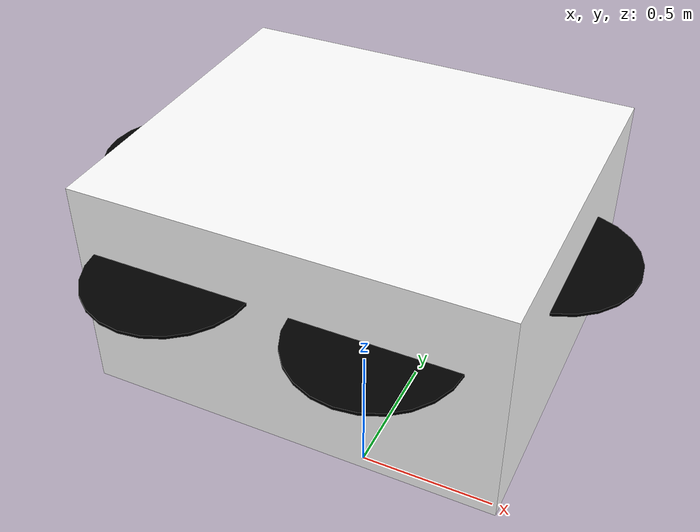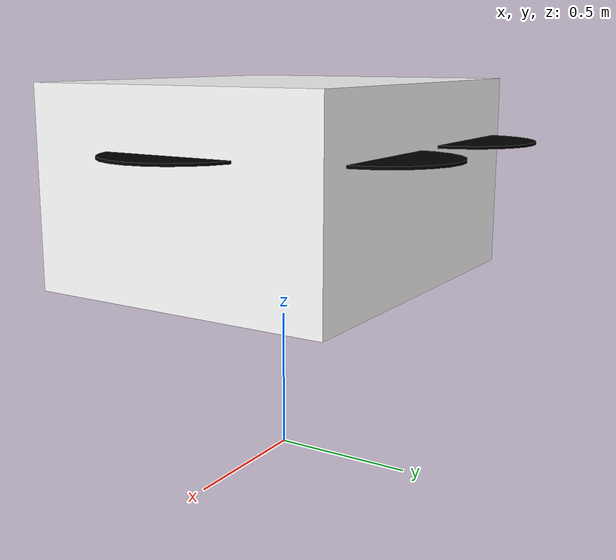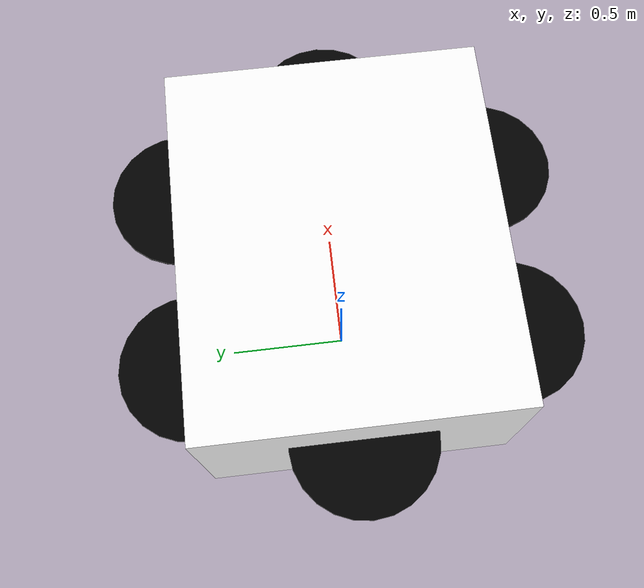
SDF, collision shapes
<sdf version='1.11'>
  <model name='my_hexacopter'>
    <plugin
      filename="libgz-sim-sensors-system.so"
      name="gz::sim::systems::Sensors">
      <render_engine>ogre2</render_engine>
    </plugin>
    <plugin filename="libgz-sim-multicopter-motor-model-system.so" name="gz::sim::systems::MulticopterMotorModel">
      <robotNamespace>my_hexacopter</robotNamespace>
      <jointName>rotor_1-joint</jointName>
      <jointName>rotor_2-joint</jointName>
      <jointName>rotor_3-joint</jointName>
      <jointName>rotor_4-joint</jointName>
      <jointName>rotor_5-joint</jointName>
      <jointName>rotor_6-joint</jointName>
      <linkName>rotor_1_link</linkName>
      <linkName>rotor_2_link</linkName>
      <linkName>rotor_3_link</linkName>
      <linkName>rotor_4_link</linkName>
      <linkName>rotor_5_link</linkName>
      <linkName>rotor_6_link</linkName>
      <turningDirection>cw</turningDirection>
      <turningDirection>ccw</turningDirection>
      <turningDirection>cw</turningDirection>
      <turningDirection>ccw</turningDirection>
      <turningDirection>cw</turningDirection>
      <turningDirection>ccw</turningDirection>
      <motorType>velocity</motorType>
      <motorConstant>8.54858e-06</motorConstant>
      <momentConstant>0.016</momentConstant>
      <commandSubTopic>command/motor_speed</commandSubTopic>
      <motorNumber>0</motorNumber>
      <motorNumber>1</motorNumber>
      <motorNumber>2</motorNumber>
      <motorNumber>3</motorNumber>
      <motorNumber>4</motorNumber>
      <motorNumber>5</motorNumber>
      <rotorDragCoefficient>0.000806428</rotorDragCoefficient>
      <rotorVelocitySlowdownSim>10</rotorVelocitySlowdownSim>
      <frequencyCutoff>500</frequencyCutoff>
      <samplingRate>250</samplingRate>
    </plugin>

    <static>false</static>
    <pose>0 0 1 0 0 0</pose>
    <link name='base_link'>
      <inertial>
        <mass>1.5</mass>
        <inertia>
          <ixx>0.03</ixx><ixy>0</ixy><ixz>0</ixz>
          <iyy>0.03</iyy><iyz>0</iyz><izz>0.06</izz>
        </inertia>
      </inertial>
      <collision name='base_link_collision'>
        <geometry><box><size>1.3 1.1 0.7</size></box></geometry>
      </collision>
      <visual name='base_link_visual'>
        <pose>0 0 0 3.14159 0 0</pose>
        <geometry>
          <mesh>
            <scale>1 1 1</scale>
            <uri>model://my_hexacopter/meshes/base_link.STL</uri>
          </mesh>
        </geometry>
        <material>
          <diffuse>1 1 1 1</diffuse>
          <ambient>1 1 1 1</ambient>
        </material>
      </visual>

      <sensor name="air_pressure_sensor" type="air_pressure">
        <always_on>1</always_on>
        <update_rate>50</update_rate>
        <air_pressure>
          <pressure>
            <noise type="gaussian"><mean>0</mean><stddev>3</stddev></noise>
          </pressure>
        </air_pressure>
      </sensor>

      <sensor name="magnetometer_sensor" type="magnetometer">
        <always_on>1</always_on>
        <update_rate>100</update_rate>
        <magnetometer>
          <x><noise type="gaussian"><stddev>0.0001</stddev></noise></x>
          <y><noise type="gaussian"><stddev>0.0001</stddev></noise></y>
          <z><noise type="gaussian"><stddev>0.0001</stddev></noise></z>
        </magnetometer>
      </sensor>

      <sensor name="imu_sensor" type="imu">
        <always_on>1</always_on>
        <update_rate>250</update_rate>
        <imu>
          <angular_velocity>
            <x><noise type="gaussian"><mean>0.0</mean><stddev>0.00087</stddev></noise></x>
            <y><noise type="gaussian"><mean>0.0</mean><stddev>0.00087</stddev></noise></y>
            <z><noise type="gaussian"><mean>0.0</mean><stddev>0.00087</stddev></noise></z>
          </angular_velocity>
          <linear_acceleration>
            <x><noise type="gaussian"><mean>0.0</mean><stddev>0.00637</stddev></noise></x>
            <y><noise type="gaussian"><mean>0.0</mean><stddev>0.00637</stddev></noise></y>
            <z><noise type="gaussian"><mean>0.0</mean><stddev>0.00686</stddev></noise></z>
          </linear_acceleration>
        </imu>
      </sensor>

      <sensor name="navsat_sensor" type="navsat">
        <always_on>1</always_on>
        <update_rate>30</update_rate>
      </sensor>
    </link>

    <joint name='rotor_1-joint' type='revolute'>
      <parent>base_link</parent>
      <child>rotor_1_link</child>
      <axis>
        <xyz>0 0 1</xyz>
        <limit><lower>-1e16</lower><upper>1e16</upper></limit>
        <dynamics><damping>0.005</damping></dynamics>
      </axis>
    </joint>
    <link name='rotor_1_link'>
      <pose>0.58964 0.00033 0.13625 0 0 0</pose>
      <inertial>
        <mass>0.05</mass>
        <inertia>
          <ixx>0.0001</ixx><ixy>0</ixy><ixz>0</ixz>
          <iyy>0.0001</iyy><iyz>0</iyz><izz>0.0002</izz>
        </inertia>
      </inertial>
      <collision name='rotor_1_link_collision'>
        <geometry><cylinder><radius>0.25</radius><length>0.01</length></cylinder></geometry>
      </collision>
      <visual name='rotor_1_link_visual'>
        <pose>0 0 0 3.14159 0 0</pose>
        <geometry><mesh><uri>model://my_hexacopter/meshes/rotor_1_link.STL</uri></mesh></geometry>
        <material><diffuse>0 0 0 1</diffuse><ambient>0 0 0 1</ambient></material>
      </visual>
    </link>

    <joint name='rotor_2-joint' type='revolute'>
      <parent>base_link</parent>
      <child>rotor_2_link</child>
      <axis>
        <xyz>0 0 1</xyz>
        <limit><lower>-1e16</lower><upper>1e16</upper></limit>
        <dynamics><damping>0.005</damping></dynamics>
      </axis>
    </joint>
    <link name='rotor_2_link'>
      <pose>-0.65761 0.00033 0.13054 0 0 0</pose>
      <inertial>
        <mass>0.05</mass>
        <inertia>
          <ixx>0.0001</ixx><ixy>0</ixy><ixz>0</ixz>
          <iyy>0.0001</iyy><iyz>0</iyz><izz>0.0002</izz>
        </inertia>
      </inertial>
      <collision name='rotor_2_link_collision'>
        <geometry><cylinder><radius>0.25</radius><length>0.01</length></cylinder></geometry>
      </collision>
      <visual name='rotor_2_link_visual'>
        <pose>0 0 0 3.14159 0 0</pose>
        <geometry><mesh><uri>model://my_hexacopter/meshes/rotor_2_link.STL</uri></mesh></geometry>
        <material><diffuse>0 0 0 1</diffuse><ambient>0 0 0 1</ambient></material>
      </visual>
    </link>

    <joint name='rotor_3-joint' type='revolute'>
      <parent>base_link</parent>
      <child>rotor_3_link</child>
      <axis>
        <xyz>0 0 1</xyz>
        <limit><lower>-1e16</lower><upper>1e16</upper></limit>
        <dynamics><damping>0.005</damping></dynamics>
      </axis>
    </joint>
    <link name='rotor_3_link'>
      <pose>-0.3458 -0.53975 0.13625 0 0 0</pose>
      <inertial>
        <mass>0.05</mass>
        <inertia>
          <ixx>0.0001</ixx><ixy>0</ixy><ixz>0</ixz>
          <iyy>0.0001</iyy><iyz>0</iyz><izz>0.0002</izz>
        </inertia>
      </inertial>
      <collision name='rotor_3_link_collision'>
        <geometry><cylinder><radius>0.25</radius><length>0.01</length></cylinder></geometry>
      </collision>
      <visual name='rotor_3_link_visual'>
        <pose>0 0 0 3.14159 0 0</pose>
        <geometry><mesh><uri>model://my_hexacopter/meshes/rotor_3_link.STL</uri></mesh></geometry>
        <material><diffuse>0 0 0 1</diffuse><ambient>0 0 0 1</ambient></material>
      </visual>
    </link>

    <joint name='rotor_4-joint' type='revolute'>
      <parent>base_link</parent>
      <child>rotor_4_link</child>
      <axis>
        <xyz>0 0 1</xyz>
        <limit><lower>-1e16</lower><upper>1e16</upper></limit>
        <dynamics><damping>0.005</damping></dynamics>
      </axis>
    </joint>
    <link name='rotor_4_link'>
      <pose>0.27782 0.54041 0.13054 0 0 0</pose>
      <inertial>
        <mass>0.05</mass>
        <inertia>
          <ixx>0.0001</ixx><ixy>0</ixy><ixz>0</ixz>
          <iyy>0.0001</iyy><iyz>0</iyz><izz>0.0002</izz>
        </inertia>
      </inertial>
      <collision name='rotor_4_link_collision'>
        <geometry><cylinder><radius>0.25</radius><length>0.01</length></cylinder></geometry>
      </collision>
      <visual name='rotor_4_link_visual'>
        <pose>0 0 0 3.14159 0 0</pose>
        <geometry><mesh><uri>model://my_hexacopter/meshes/rotor_4_link.STL</uri></mesh></geometry>
        <material><diffuse>0 0 0 1</diffuse><ambient>0 0 0 1</ambient></material>
      </visual>
    </link>

    <joint name='rotor_5-joint' type='revolute'>
      <parent>base_link</parent>
      <child>rotor_5_link</child>
      <axis>
        <xyz>0 0 1</xyz>
        <limit><lower>-1e16</lower><upper>1e16</upper></limit>
        <dynamics><damping>0.005</damping></dynamics>
      </axis>
    </joint>
    <link name='rotor_5_link'>
      <pose>0.27782 -0.53975 0.13054 0 0 0</pose>
      <inertial>
        <mass>0.05</mass>
        <inertia>
          <ixx>0.0001</ixx><ixy>0</ixy><ixz>0</ixz>
          <iyy>0.0001</iyy><iyz>0</iyz><izz>0.0002</izz>
        </inertia>
      </inertial>
      <collision name='rotor_5_link_collision'>
        <geometry><cylinder><radius>0.25</radius><length>0.01</length></cylinder></geometry>
      </collision>
      <visual name='rotor_5_link_visual'>
        <pose>0 0 0 3.14159 0 0</pose>
        <geometry><mesh><uri>model://my_hexacopter/meshes/rotor_5_link.STL</uri></mesh></geometry>
        <material><diffuse>0 0 0 1</diffuse><ambient>0 0 0 1</ambient></material>
      </visual>
    </link>

    <joint name='rotor_6-joint' type='revolute'>
      <parent>base_link</parent>
      <child>rotor_6_link</child>
      <axis>
        <xyz>0 0 1</xyz>
        <limit><lower>-1e16</lower><upper>1e16</upper></limit>
        <dynamics><damping>0.005</damping></dynamics>
      </axis>
    </joint>
    <link name='rotor_6_link'>
      <pose>-0.3458 0.53975 0.13625 0 0 0</pose>
      <inertial>
        <mass>0.05</mass>
        <inertia>
          <ixx>0.0001</ixx><ixy>0</ixy><ixz>0</ixz>
          <iyy>0.0001</iyy><iyz>0</iyz><izz>0.0002</izz>
        </inertia>
      </inertial>
      <collision name='rotor_6_link_collision'>
        <geometry><cylinder><radius>0.25</radius><length>0.01</length></cylinder></geometry>
      </collision>
      <visual name='rotor_6_link_visual'>
        <pose>0 0 0 3.14159 0 0</pose>
        <geometry><mesh><uri>model://my_hexacopter/meshes/rotor_6_link.STL</uri></mesh></geometry>
        <material><diffuse>0 0 0 1</diffuse><ambient>0 0 0 1</ambient></material>
      </visual>
    </link>
  </model>
</sdf>
